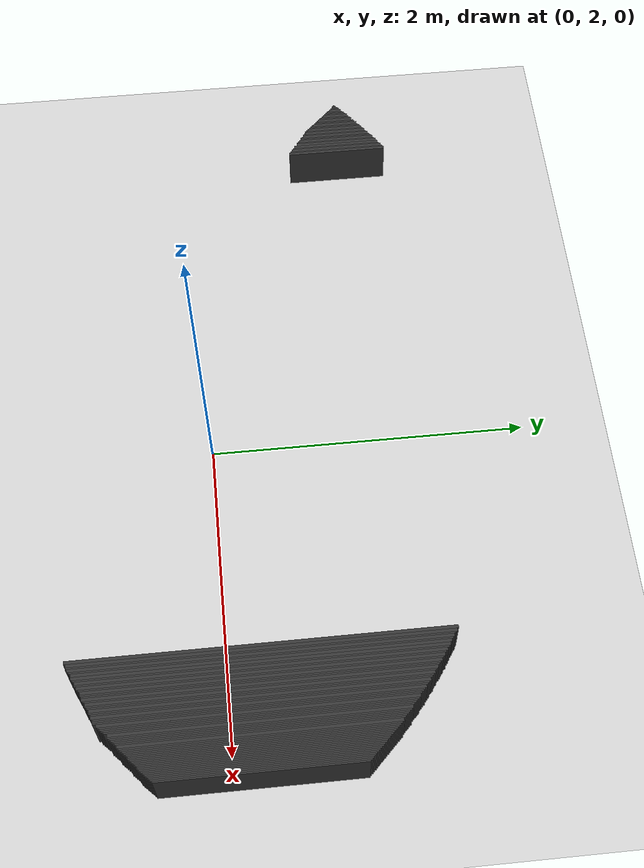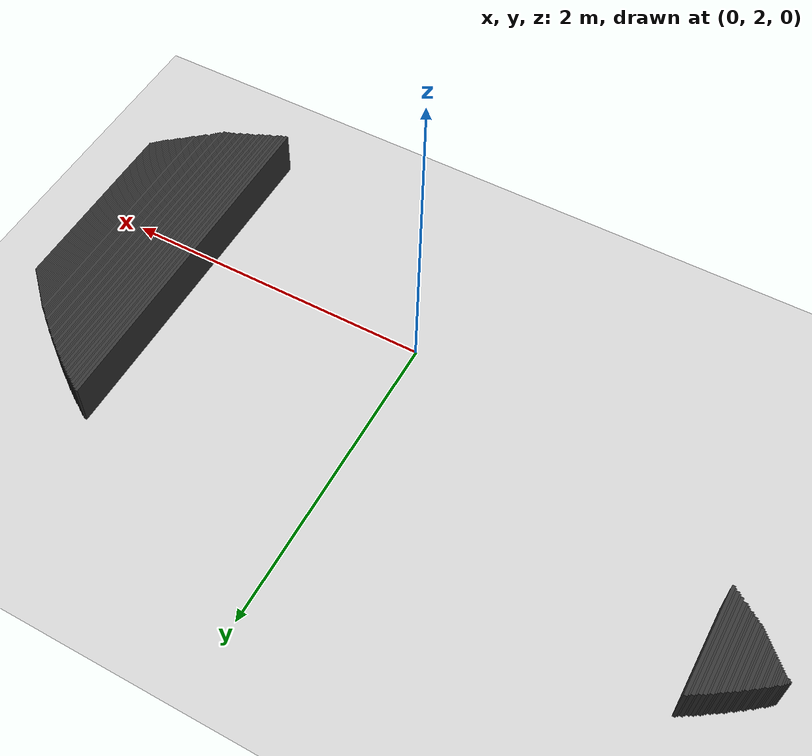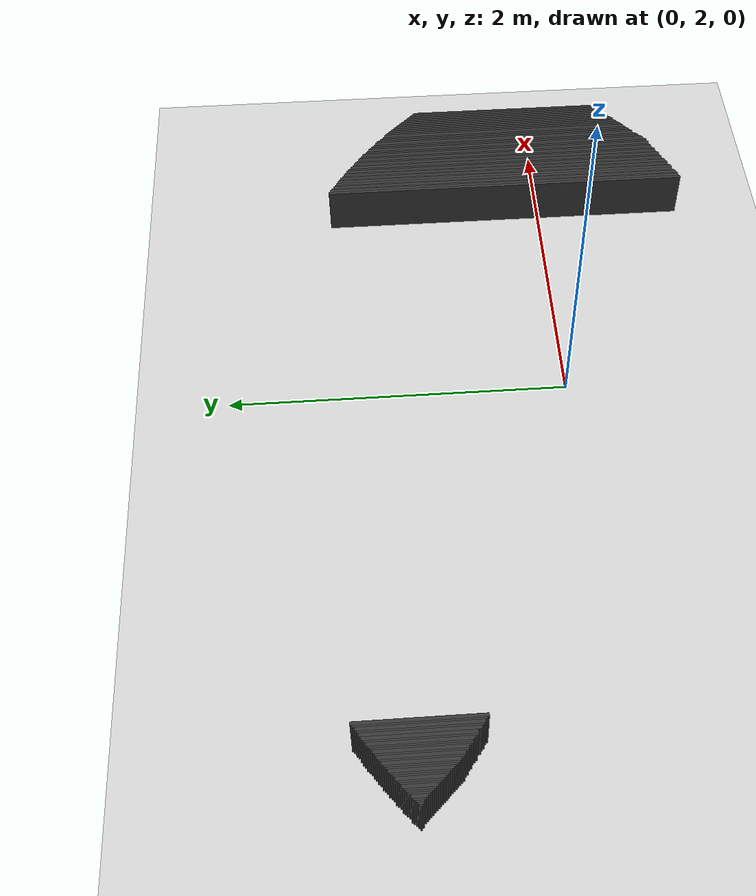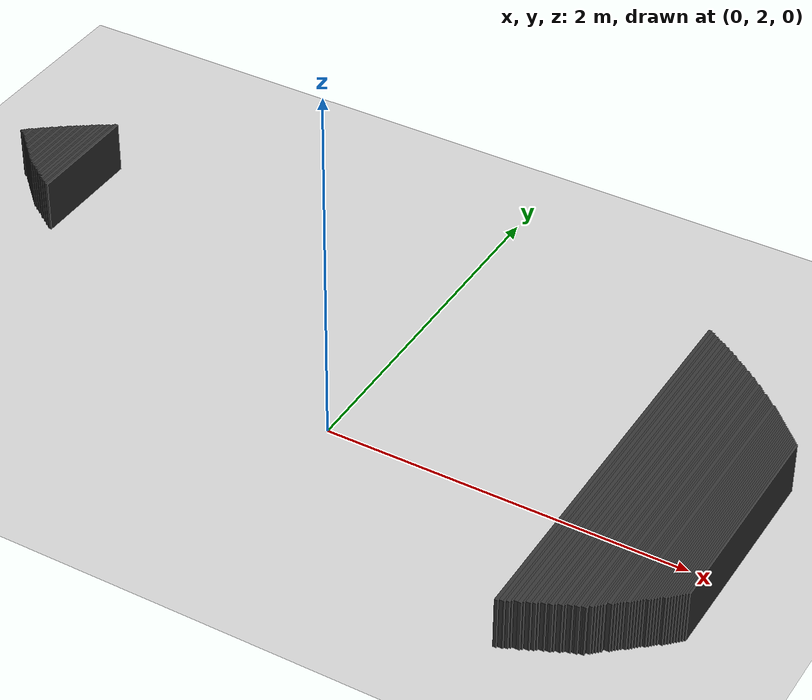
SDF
<sdf version="1.7">
 <world name="mapa_mundo">
  <model name="ground_plane">
   <static>true</static>
   <link name="link">
    <collision name="collision">
     <geometry><plane><normal>0 0 1</normal><size>10 10</size></plane></geometry>
     <surface><friction><ode><mu>100</mu><mu2>50</mu2></ode></friction></surface>
    </collision>
    <visual name="visual">
     <geometry><plane><normal>0 0 1</normal><size>10 10</size></plane></geometry>
     <material>
      <ambient>0.8 0.8 0.8 1</ambient>
      <diffuse>0.8 0.8 0.8 1</diffuse>
      <specular>0.8 0.8 0.8 1</specular>
     </material>
    </visual>
   </link>
  </model>
  <model name="wall_100">
   <static>true</static>
   <link name="link">
    <collision name="collision"><geometry><box><size>0.02 2.27 0.3</size></box></geometry></collision>
    <visual name="visual">
     <geometry><box><size>0.02 2.27 0.3</size></box></geometry>
     <material><ambient>0.2 0.2 0.2 1</ambient><diffuse>0.2 0.2 0.2 1</diffuse></material>
    </visual>
    <pose>1.45 2.225 0.15 0 0 0</pose>
   </link>
  </model>
  <model name="wall_101">
   <static>true</static>
   <link name="link">
    <collision name="collision"><geometry><box><size>0.02 0.67 0.3</size></box></geometry></collision>
    <visual name="visual">
     <geometry><box><size>0.02 0.67 0.3</size></box></geometry>
     <material><ambient>0.2 0.2 0.2 1</ambient><diffuse>0.2 0.2 0.2 1</diffuse></material>
    </visual>
    <pose>-2.21 3.015 0.15 0 0 0</pose>
   </link>
  </model>
  <model name="wall_102">
   <static>true</static>
   <link name="link">
    <collision name="collision"><geometry><box><size>0.02 2.25 0.3</size></box></geometry></collision>
    <visual name="visual">
     <geometry><box><size>0.02 2.25 0.3</size></box></geometry>
     <material><ambient>0.2 0.2 0.2 1</ambient><diffuse>0.2 0.2 0.2 1</diffuse></material>
    </visual>
    <pose>1.47 2.225 0.15 0 0 0</pose>
   </link>
  </model>
  <model name="wall_103">
   <static>true</static>
   <link name="link">
    <collision name="collision"><geometry><box><size>0.01 0.65 0.3</size></box></geometry></collision>
    <visual name="visual">
     <geometry><box><size>0.01 0.65 0.3</size></box></geometry>
     <material><ambient>0.2 0.2 0.2 1</ambient><diffuse>0.2 0.2 0.2 1</diffuse></material>
    </visual>
    <pose>-2.225 3.015 0.15 0 0 0</pose>
   </link>
  </model>
  <model name="wall_104">
   <static>true</static>
   <link name="link">
    <collision name="collision"><geometry><box><size>0.01 2.24 0.3</size></box></geometry></collision>
    <visual name="visual">
     <geometry><box><size>0.01 2.24 0.3</size></box></geometry>
     <material><ambient>0.2 0.2 0.2 1</ambient><diffuse>0.2 0.2 0.2 1</diffuse></material>
    </visual>
    <pose>1.485 2.22 0.15 0 0 0</pose>
   </link>
  </model>
  <model name="wall_105">
   <static>true</static>
   <link name="link">
    <collision name="collision"><geometry><box><size>0.02 0.63 0.3</size></box></geometry></collision>
    <visual name="visual">
     <geometry><box><size>0.02 0.63 0.3</size></box></geometry>
     <material><ambient>0.2 0.2 0.2 1</ambient><diffuse>0.2 0.2 0.2 1</diffuse></material>
    </visual>
    <pose>-2.24 3.015 0.15 0 0 0</pose>
   </link>
  </model>
  <model name="wall_106">
   <static>true</static>
   <link name="link">
    <collision name="collision"><geometry><box><size>0.02 2.22 0.3</size></box></geometry></collision>
    <visual name="visual">
     <geometry><box><size>0.02 2.22 0.3</size></box></geometry>
     <material><ambient>0.2 0.2 0.2 1</ambient><diffuse>0.2 0.2 0.2 1</diffuse></material>
    </visual>
    <pose>1.5 2.22 0.15 0 0 0</pose>
   </link>
  </model>
  <model name="wall_107">
   <static>true</static>
   <link name="link">
    <collision name="collision"><geometry><box><size>0.01 0.61 0.3</size></box></geometry></collision>
    <visual name="visual">
     <geometry><box><size>0.01 0.61 0.3</size></box></geometry>
     <material><ambient>0.2 0.2 0.2 1</ambient><diffuse>0.2 0.2 0.2 1</diffuse></material>
    </visual>
    <pose>-2.255 3.015 0.15 0 0 0</pose>
   </link>
  </model>
  <model name="wall_108">
   <static>true</static>
   <link name="link">
    <collision name="collision"><geometry><box><size>0.01 2.2 0.3</size></box></geometry></collision>
    <visual name="visual">
     <geometry><box><size>0.01 2.2 0.3</size></box></geometry>
     <material><ambient>0.2 0.2 0.2 1</ambient><diffuse>0.2 0.2 0.2 1</diffuse></material>
    </visual>
    <pose>1.5150000000000001 2.22 0.15 0 0 0</pose>
   </link>
  </model>
  <model name="wall_109">
   <static>true</static>
   <link name="link">
    <collision name="collision"><geometry><box><size>0.02 0.59 0.3</size></box></geometry></collision>
    <visual name="visual">
     <geometry><box><size>0.02 0.59 0.3</size></box></geometry>
     <material><ambient>0.2 0.2 0.2 1</ambient><diffuse>0.2 0.2 0.2 1</diffuse></material>
    </visual>
    <pose>-2.27 3.015 0.15 0 0 0</pose>
   </link>
  </model>
  <model name="wall_110">
   <static>true</static>
   <link name="link">
    <collision name="collision"><geometry><box><size>0.02 2.18 0.3</size></box></geometry></collision>
    <visual name="visual">
     <geometry><box><size>0.02 2.18 0.3</size></box></geometry>
     <material><ambient>0.2 0.2 0.2 1</ambient><diffuse>0.2 0.2 0.2 1</diffuse></material>
    </visual>
    <pose>1.53 2.22 0.15 0 0 0</pose>
   </link>
  </model>
  <model name="wall_111">
   <static>true</static>
   <link name="link">
    <collision name="collision"><geometry><box><size>0.02 0.56 0.3</size></box></geometry></collision>
    <visual name="visual">
     <geometry><box><size>0.02 0.56 0.3</size></box></geometry>
     <material><ambient>0.2 0.2 0.2 1</ambient><diffuse>0.2 0.2 0.2 1</diffuse></material>
    </visual>
    <pose>-2.29 3.02 0.15 0 0 0</pose>
   </link>
  </model>
  <model name="wall_112">
   <static>true</static>
   <link name="link">
    <collision name="collision"><geometry><box><size>0.02 2.17 0.3</size></box></geometry></collision>
    <visual name="visual">
     <geometry><box><size>0.02 2.17 0.3</size></box></geometry>
     <material><ambient>0.2 0.2 0.2 1</ambient><diffuse>0.2 0.2 0.2 1</diffuse></material>
    </visual>
    <pose>1.55 2.215 0.15 0 0 0</pose>
   </link>
  </model>
  <model name="wall_113">
   <static>true</static>
   <link name="link">
    <collision name="collision"><geometry><box><size>0.01 0.55 0.3</size></box></geometry></collision>
    <visual name="visual">
     <geometry><box><size>0.01 0.55 0.3</size></box></geometry>
     <material><ambient>0.2 0.2 0.2 1</ambient><diffuse>0.2 0.2 0.2 1</diffuse></material>
    </visual>
    <pose>-2.305 3.015 0.15 0 0 0</pose>
   </link>
  </model>
  <model name="wall_114">
   <static>true</static>
   <link name="link">
    <collision name="collision"><geometry><box><size>0.01 2.15 0.3</size></box></geometry></collision>
    <visual name="visual">
     <geometry><box><size>0.01 2.15 0.3</size></box></geometry>
     <material><ambient>0.2 0.2 0.2 1</ambient><diffuse>0.2 0.2 0.2 1</diffuse></material>
    </visual>
    <pose>1.565 2.215 0.15 0 0 0</pose>
   </link>
  </model>
  <model name="wall_115">
   <static>true</static>
   <link name="link">
    <collision name="collision"><geometry><box><size>0.02 0.52 0.3</size></box></geometry></collision>
    <visual name="visual">
     <geometry><box><size>0.02 0.52 0.3</size></box></geometry>
     <material><ambient>0.2 0.2 0.2 1</ambient><diffuse>0.2 0.2 0.2 1</diffuse></material>
    </visual>
    <pose>-2.32 3.02 0.15 0 0 0</pose>
   </link>
  </model>
  <model name="wall_116">
   <static>true</static>
   <link name="link">
    <collision name="collision"><geometry><box><size>0.02 2.13 0.3</size></box></geometry></collision>
    <visual name="visual">
     <geometry><box><size>0.02 2.13 0.3</size></box></geometry>
     <material><ambient>0.2 0.2 0.2 1</ambient><diffuse>0.2 0.2 0.2 1</diffuse></material>
    </visual>
    <pose>1.58 2.215 0.15 0 0 0</pose>
   </link>
  </model>
  <model name="wall_117">
   <static>true</static>
   <link name="link">
    <collision name="collision"><geometry><box><size>0.01 0.5 0.3</size></box></geometry></collision>
    <visual name="visual">
     <geometry><box><size>0.01 0.5 0.3</size></box></geometry>
     <material><ambient>0.2 0.2 0.2 1</ambient><diffuse>0.2 0.2 0.2 1</diffuse></material>
    </visual>
    <pose>-2.335 3.02 0.15 0 0 0</pose>
   </link>
  </model>
  <model name="wall_118">
   <static>true</static>
   <link name="link">
    <collision name="collision"><geometry><box><size>0.01 2.12 0.3</size></box></geometry></collision>
    <visual name="visual">
     <geometry><box><size>0.01 2.12 0.3</size></box></geometry>
     <material><ambient>0.2 0.2 0.2 1</ambient><diffuse>0.2 0.2 0.2 1</diffuse></material>
    </visual>
    <pose>1.595 2.21 0.15 0 0 0</pose>
   </link>
  </model>
  <model name="wall_119">
   <static>true</static>
   <link name="link">
    <collision name="collision"><geometry><box><size>0.01 0.49 0.3</size></box></geometry></collision>
    <visual name="visual">
     <geometry><box><size>0.01 0.49 0.3</size></box></geometry>
     <material><ambient>0.2 0.2 0.2 1</ambient><diffuse>0.2 0.2 0.2 1</diffuse></material>
    </visual>
    <pose>-2.345 3.015 0.15 0 0 0</pose>
   </link>
  </model>
  <model name="wall_120">
   <static>true</static>
   <link name="link">
    <collision name="collision"><geometry><box><size>0.02 2.1 0.3</size></box></geometry></collision>
    <visual name="visual">
     <geometry><box><size>0.02 2.1 0.3</size></box></geometry>
     <material><ambient>0.2 0.2 0.2 1</ambient><diffuse>0.2 0.2 0.2 1</diffuse></material>
    </visual>
    <pose>1.61 2.21 0.15 0 0 0</pose>
   </link>
  </model>
  <model name="wall_121">
   <static>true</static>
   <link name="link">
    <collision name="collision"><geometry><box><size>0.02 0.46 0.3</size></box></geometry></collision>
    <visual name="visual">
     <geometry><box><size>0.02 0.46 0.3</size></box></geometry>
     <material><ambient>0.2 0.2 0.2 1</ambient><diffuse>0.2 0.2 0.2 1</diffuse></material>
    </visual>
    <pose>-2.36 3.02 0.15 0 0 0</pose>
   </link>
  </model>
  <model name="wall_122">
   <static>true</static>
   <link name="link">
    <collision name="collision"><geometry><box><size>0.01 2.08 0.3</size></box></geometry></collision>
    <visual name="visual">
     <geometry><box><size>0.01 2.08 0.3</size></box></geometry>
     <material><ambient>0.2 0.2 0.2 1</ambient><diffuse>0.2 0.2 0.2 1</diffuse></material>
    </visual>
    <pose>1.625 2.21 0.15 0 0 0</pose>
   </link>
  </model>
  <model name="wall_123">
   <static>true</static>
   <link name="link">
    <collision name="collision"><geometry><box><size>0.01 0.45 0.3</size></box></geometry></collision>
    <visual name="visual">
     <geometry><box><size>0.01 0.45 0.3</size></box></geometry>
     <material><ambient>0.2 0.2 0.2 1</ambient><diffuse>0.2 0.2 0.2 1</diffuse></material>
    </visual>
    <pose>-2.375 3.015 0.15 0 0 0</pose>
   </link>
  </model>
  <model name="wall_124">
   <static>true</static>
   <link name="link">
    <collision name="collision"><geometry><box><size>0.02 2.06 0.3</size></box></geometry></collision>
    <visual name="visual">
     <geometry><box><size>0.02 2.06 0.3</size></box></geometry>
     <material><ambient>0.2 0.2 0.2 1</ambient><diffuse>0.2 0.2 0.2 1</diffuse></material>
    </visual>
    <pose>1.6400000000000001 2.21 0.15 0 0 0</pose>
   </link>
  </model>
  <model name="wall_125">
   <static>true</static>
   <link name="link">
    <collision name="collision"><geometry><box><size>0.02 0.42 0.3</size></box></geometry></collision>
    <visual name="visual">
     <geometry><box><size>0.02 0.42 0.3</size></box></geometry>
     <material><ambient>0.2 0.2 0.2 1</ambient><diffuse>0.2 0.2 0.2 1</diffuse></material>
    </visual>
    <pose>-2.39 3.02 0.15 0 0 0</pose>
   </link>
  </model>
  <model name="wall_126">
   <static>true</static>
   <link name="link">
    <collision name="collision"><geometry><box><size>0.01 2.05 0.3</size></box></geometry></collision>
    <visual name="visual">
     <geometry><box><size>0.01 2.05 0.3</size></box></geometry>
     <material><ambient>0.2 0.2 0.2 1</ambient><diffuse>0.2 0.2 0.2 1</diffuse></material>
    </visual>
    <pose>1.655 2.205 0.15 0 0 0</pose>
   </link>
  </model>
  <model name="wall_127">
   <static>true</static>
   <link name="link">
    <collision name="collision">
     <geometry><box><size>0.01 0.41000000000000003 0.3</size></box></geometry>
    </collision>
    <visual name="visual">
     <geometry><box><size>0.01 0.41000000000000003 0.3</size></box></geometry>
     <material><ambient>0.2 0.2 0.2 1</ambient><diffuse>0.2 0.2 0.2 1</diffuse></material>
    </visual>
    <pose>-2.4050000000000002 3.015 0.15 0 0 0</pose>
   </link>
  </model>
  <model name="wall_128">
   <static>true</static>
   <link name="link">
    <collision name="collision">
     <geometry><box><size>0.01 2.0300000000000002 0.3</size></box></geometry>
    </collision>
    <visual name="visual">
     <geometry><box><size>0.01 2.0300000000000002 0.3</size></box></geometry>
     <material><ambient>0.2 0.2 0.2 1</ambient><diffuse>0.2 0.2 0.2 1</diffuse></material>
    </visual>
    <pose>1.665 2.205 0.15 0 0 0</pose>
   </link>
  </model>
  <model name="wall_129">
   <static>true</static>
   <link name="link">
    <collision name="collision"><geometry><box><size>0.02 0.38 0.3</size></box></geometry></collision>
    <visual name="visual">
     <geometry><box><size>0.02 0.38 0.3</size></box></geometry>
     <material><ambient>0.2 0.2 0.2 1</ambient><diffuse>0.2 0.2 0.2 1</diffuse></material>
    </visual>
    <pose>-2.42 3.02 0.15 0 0 0</pose>
   </link>
  </model>
  <model name="wall_130">
   <static>true</static>
   <link name="link">
    <collision name="collision"><geometry><box><size>0.02 2.02 0.3</size></box></geometry></collision>
    <visual name="visual">
     <geometry><box><size>0.02 2.02 0.3</size></box></geometry>
     <material><ambient>0.2 0.2 0.2 1</ambient><diffuse>0.2 0.2 0.2 1</diffuse></material>
    </visual>
    <pose>1.68 2.2 0.15 0 0 0</pose>
   </link>
  </model>
  <model name="wall_131">
   <static>true</static>
   <link name="link">
    <collision name="collision"><geometry><box><size>0.01 0.36 0.3</size></box></geometry></collision>
    <visual name="visual">
     <geometry><box><size>0.01 0.36 0.3</size></box></geometry>
     <material><ambient>0.2 0.2 0.2 1</ambient><diffuse>0.2 0.2 0.2 1</diffuse></material>
    </visual>
    <pose>-2.435 3.02 0.15 0 0 0</pose>
   </link>
  </model>
  <model name="wall_132">
   <static>true</static>
   <link name="link">
    <collision name="collision"><geometry><box><size>0.01 2.0 0.3</size></box></geometry></collision>
    <visual name="visual">
     <geometry><box><size>0.01 2.0 0.3</size></box></geometry>
     <material><ambient>0.2 0.2 0.2 1</ambient><diffuse>0.2 0.2 0.2 1</diffuse></material>
    </visual>
    <pose>1.695 2.2 0.15 0 0 0</pose>
   </link>
  </model>
  <model name="wall_133">
   <static>true</static>
   <link name="link">
    <collision name="collision"><geometry><box><size>0.01 0.34 0.3</size></box></geometry></collision>
    <visual name="visual">
     <geometry><box><size>0.01 0.34 0.3</size></box></geometry>
     <material><ambient>0.2 0.2 0.2 1</ambient><diffuse>0.2 0.2 0.2 1</diffuse></material>
    </visual>
    <pose>-2.445 3.02 0.15 0 0 0</pose>
   </link>
  </model>
  <model name="wall_134">
   <static>true</static>
   <link name="link">
    <collision name="collision"><geometry><box><size>0.02 1.98 0.3</size></box></geometry></collision>
    <visual name="visual">
     <geometry><box><size>0.02 1.98 0.3</size></box></geometry>
     <material><ambient>0.2 0.2 0.2 1</ambient><diffuse>0.2 0.2 0.2 1</diffuse></material>
    </visual>
    <pose>1.71 2.2 0.15 0 0 0</pose>
   </link>
  </model>
  <model name="wall_135">
   <static>true</static>
   <link name="link">
    <collision name="collision"><geometry><box><size>0.02 0.31 0.3</size></box></geometry></collision>
    <visual name="visual">
     <geometry><box><size>0.02 0.31 0.3</size></box></geometry>
     <material><ambient>0.2 0.2 0.2 1</ambient><diffuse>0.2 0.2 0.2 1</diffuse></material>
    </visual>
    <pose>-2.46 3.025 0.15 0 0 0</pose>
   </link>
  </model>
  <model name="wall_136">
   <static>true</static>
   <link name="link">
    <collision name="collision"><geometry><box><size>0.01 1.97 0.3</size></box></geometry></collision>
    <visual name="visual">
     <geometry><box><size>0.01 1.97 0.3</size></box></geometry>
     <material><ambient>0.2 0.2 0.2 1</ambient><diffuse>0.2 0.2 0.2 1</diffuse></material>
    </visual>
    <pose>1.725 2.195 0.15 0 0 0</pose>
   </link>
  </model>
  <model name="wall_137">
   <static>true</static>
   <link name="link">
    <collision name="collision"><geometry><box><size>0.01 0.29 0.3</size></box></geometry></collision>
    <visual name="visual">
     <geometry><box><size>0.01 0.29 0.3</size></box></geometry>
     <material><ambient>0.2 0.2 0.2 1</ambient><diffuse>0.2 0.2 0.2 1</diffuse></material>
    </visual>
    <pose>-2.475 3.025 0.15 0 0 0</pose>
   </link>
  </model>
  <model name="wall_138">
   <static>true</static>
   <link name="link">
    <collision name="collision"><geometry><box><size>0.01 1.95 0.3</size></box></geometry></collision>
    <visual name="visual">
     <geometry><box><size>0.01 1.95 0.3</size></box></geometry>
     <material><ambient>0.2 0.2 0.2 1</ambient><diffuse>0.2 0.2 0.2 1</diffuse></material>
    </visual>
    <pose>1.735 2.195 0.15 0 0 0</pose>
   </link>
  </model>
  <model name="wall_139">
   <static>true</static>
   <link name="link">
    <collision name="collision"><geometry><box><size>0.01 0.27 0.3</size></box></geometry></collision>
    <visual name="visual">
     <geometry><box><size>0.01 0.27 0.3</size></box></geometry>
     <material><ambient>0.2 0.2 0.2 1</ambient><diffuse>0.2 0.2 0.2 1</diffuse></material>
    </visual>
    <pose>-2.485 3.025 0.15 0 0 0</pose>
   </link>
  </model>
  <model name="wall_140">
   <static>true</static>
   <link name="link">
    <collision name="collision"><geometry><box><size>0.02 1.93 0.3</size></box></geometry></collision>
    <visual name="visual">
     <geometry><box><size>0.02 1.93 0.3</size></box></geometry>
     <material><ambient>0.2 0.2 0.2 1</ambient><diffuse>0.2 0.2 0.2 1</diffuse></material>
    </visual>
    <pose>1.75 2.195 0.15 0 0 0</pose>
   </link>
  </model>
  <model name="wall_141">
   <static>true</static>
   <link name="link">
    <collision name="collision"><geometry><box><size>0.02 0.24 0.3</size></box></geometry></collision>
    <visual name="visual">
     <geometry><box><size>0.02 0.24 0.3</size></box></geometry>
     <material><ambient>0.2 0.2 0.2 1</ambient><diffuse>0.2 0.2 0.2 1</diffuse></material>
    </visual>
    <pose>-2.5 3.0300000000000002 0.15 0 0 0</pose>
   </link>
  </model>
  <model name="wall_142">
   <static>true</static>
   <link name="link">
    <collision name="collision"><geometry><box><size>0.01 1.92 0.3</size></box></geometry></collision>
    <visual name="visual">
     <geometry><box><size>0.01 1.92 0.3</size></box></geometry>
     <material><ambient>0.2 0.2 0.2 1</ambient><diffuse>0.2 0.2 0.2 1</diffuse></material>
    </visual>
    <pose>1.7650000000000001 2.19 0.15 0 0 0</pose>
   </link>
  </model>
  <model name="wall_143">
   <static>true</static>
   <link name="link">
    <collision name="collision"><geometry><box><size>0.01 0.22 0.3</size></box></geometry></collision>
    <visual name="visual">
     <geometry><box><size>0.01 0.22 0.3</size></box></geometry>
     <material><ambient>0.2 0.2 0.2 1</ambient><diffuse>0.2 0.2 0.2 1</diffuse></material>
    </visual>
    <pose>-2.515 3.0300000000000002 0.15 0 0 0</pose>
   </link>
  </model>
  <model name="wall_144">
   <static>true</static>
   <link name="link">
    <collision name="collision">
     <geometry><box><size>0.01 1.9000000000000001 0.3</size></box></geometry>
    </collision>
    <visual name="visual">
     <geometry><box><size>0.01 1.9000000000000001 0.3</size></box></geometry>
     <material><ambient>0.2 0.2 0.2 1</ambient><diffuse>0.2 0.2 0.2 1</diffuse></material>
    </visual>
    <pose>1.7750000000000001 2.19 0.15 0 0 0</pose>
   </link>
  </model>
  <model name="wall_145">
   <static>true</static>
   <link name="link">
    <collision name="collision"><geometry><box><size>0.01 0.2 0.3</size></box></geometry></collision>
    <visual name="visual">
     <geometry><box><size>0.01 0.2 0.3</size></box></geometry>
     <material><ambient>0.2 0.2 0.2 1</ambient><diffuse>0.2 0.2 0.2 1</diffuse></material>
    </visual>
    <pose>-2.525 3.0300000000000002 0.15 0 0 0</pose>
   </link>
  </model>
  <model name="wall_146">
   <static>true</static>
   <link name="link">
    <collision name="collision">
     <geometry><box><size>0.02 1.8900000000000001 0.3</size></box></geometry>
    </collision>
    <visual name="visual">
     <geometry><box><size>0.02 1.8900000000000001 0.3</size></box></geometry>
     <material><ambient>0.2 0.2 0.2 1</ambient><diffuse>0.2 0.2 0.2 1</diffuse></material>
    </visual>
    <pose>1.79 2.185 0.15 0 0 0</pose>
   </link>
  </model>
  <model name="wall_147">
   <static>true</static>
   <link name="link">
    <collision name="collision"><geometry><box><size>0.02 0.17 0.3</size></box></geometry></collision>
    <visual name="visual">
     <geometry><box><size>0.02 0.17 0.3</size></box></geometry>
     <material><ambient>0.2 0.2 0.2 1</ambient><diffuse>0.2 0.2 0.2 1</diffuse></material>
    </visual>
    <pose>-2.54 3.035 0.15 0 0 0</pose>
   </link>
  </model>
  <model name="wall_148">
   <static>true</static>
   <link name="link">
    <collision name="collision"><geometry><box><size>0.01 1.87 0.3</size></box></geometry></collision>
    <visual name="visual">
     <geometry><box><size>0.01 1.87 0.3</size></box></geometry>
     <material><ambient>0.2 0.2 0.2 1</ambient><diffuse>0.2 0.2 0.2 1</diffuse></material>
    </visual>
    <pose>1.805 2.185 0.15 0 0 0</pose>
   </link>
  </model>
  <model name="wall_149">
   <static>true</static>
   <link name="link">
    <collision name="collision"><geometry><box><size>0.01 0.15 0.3</size></box></geometry></collision>
    <visual name="visual">
     <geometry><box><size>0.01 0.15 0.3</size></box></geometry>
     <material><ambient>0.2 0.2 0.2 1</ambient><diffuse>0.2 0.2 0.2 1</diffuse></material>
    </visual>
    <pose>-2.555 3.035 0.15 0 0 0</pose>
   </link>
  </model>
  <model name="wall_150">
   <static>true</static>
   <link name="link">
    <collision name="collision"><geometry><box><size>0.01 1.86 0.3</size></box></geometry></collision>
    <visual name="visual">
     <geometry><box><size>0.01 1.86 0.3</size></box></geometry>
     <material><ambient>0.2 0.2 0.2 1</ambient><diffuse>0.2 0.2 0.2 1</diffuse></material>
    </visual>
    <pose>1.815 2.18 0.15 0 0 0</pose>
   </link>
  </model>
  <model name="wall_151">
   <static>true</static>
   <link name="link">
    <collision name="collision"><geometry><box><size>0.01 0.13 0.3</size></box></geometry></collision>
    <visual name="visual">
     <geometry><box><size>0.01 0.13 0.3</size></box></geometry>
     <material><ambient>0.2 0.2 0.2 1</ambient><diffuse>0.2 0.2 0.2 1</diffuse></material>
    </visual>
    <pose>-2.565 3.035 0.15 0 0 0</pose>
   </link>
  </model>
  <model name="wall_152">
   <static>true</static>
   <link name="link">
    <collision name="collision"><geometry><box><size>0.01 1.85 0.3</size></box></geometry></collision>
    <visual name="visual">
     <geometry><box><size>0.01 1.85 0.3</size></box></geometry>
     <material><ambient>0.2 0.2 0.2 1</ambient><diffuse>0.2 0.2 0.2 1</diffuse></material>
    </visual>
    <pose>1.825 2.1750000000000003 0.15 0 0 0</pose>
   </link>
  </model>
  <model name="wall_153">
   <static>true</static>
   <link name="link">
    <collision name="collision"><geometry><box><size>0.01 0.11 0.3</size></box></geometry></collision>
    <visual name="visual">
     <geometry><box><size>0.01 0.11 0.3</size></box></geometry>
     <material><ambient>0.2 0.2 0.2 1</ambient><diffuse>0.2 0.2 0.2 1</diffuse></material>
    </visual>
    <pose>-2.575 3.035 0.15 0 0 0</pose>
   </link>
  </model>
  <model name="wall_154">
   <static>true</static>
   <link name="link">
    <collision name="collision"><geometry><box><size>0.02 1.82 0.3</size></box></geometry></collision>
    <visual name="visual">
     <geometry><box><size>0.02 1.82 0.3</size></box></geometry>
     <material><ambient>0.2 0.2 0.2 1</ambient><diffuse>0.2 0.2 0.2 1</diffuse></material>
    </visual>
    <pose>1.84 2.18 0.15 0 0 0</pose>
   </link>
  </model>
  <model name="wall_155">
   <static>true</static>
   <link name="link">
    <collision name="collision"><geometry><box><size>0.02 0.08 0.3</size></box></geometry></collision>
    <visual name="visual">
     <geometry><box><size>0.02 0.08 0.3</size></box></geometry>
     <material><ambient>0.2 0.2 0.2 1</ambient><diffuse>0.2 0.2 0.2 1</diffuse></material>
    </visual>
    <pose>-2.59 3.04 0.15 0 0 0</pose>
   </link>
  </model>
  <model name="wall_156">
   <static>true</static>
   <link name="link">
    <collision name="collision"><geometry><box><size>0.01 1.8 0.3</size></box></geometry></collision>
    <visual name="visual">
     <geometry><box><size>0.01 1.8 0.3</size></box></geometry>
     <material><ambient>0.2 0.2 0.2 1</ambient><diffuse>0.2 0.2 0.2 1</diffuse></material>
    </visual>
    <pose>1.855 2.18 0.15 0 0 0</pose>
   </link>
  </model>
  <model name="wall_157">
   <static>true</static>
   <link name="link">
    <collision name="collision"><geometry><box><size>0.01 0.06 0.3</size></box></geometry></collision>
    <visual name="visual">
     <geometry><box><size>0.01 0.06 0.3</size></box></geometry>
     <material><ambient>0.2 0.2 0.2 1</ambient><diffuse>0.2 0.2 0.2 1</diffuse></material>
    </visual>
    <pose>-2.605 3.04 0.15 0 0 0</pose>
   </link>
  </model>
  <model name="wall_158">
   <static>true</static>
   <link name="link">
    <collision name="collision"><geometry><box><size>0.01 1.78 0.3</size></box></geometry></collision>
    <visual name="visual">
     <geometry><box><size>0.01 1.78 0.3</size></box></geometry>
     <material><ambient>0.2 0.2 0.2 1</ambient><diffuse>0.2 0.2 0.2 1</diffuse></material>
    </visual>
    <pose>1.865 2.18 0.15 0 0 0</pose>
   </link>
  </model>
  <model name="wall_159">
   <static>true</static>
   <link name="link">
    <collision name="collision"><geometry><box><size>0.01 0.04 0.3</size></box></geometry></collision>
    <visual name="visual">
     <geometry><box><size>0.01 0.04 0.3</size></box></geometry>
     <material><ambient>0.2 0.2 0.2 1</ambient><diffuse>0.2 0.2 0.2 1</diffuse></material>
    </visual>
    <pose>-2.615 3.04 0.15 0 0 0</pose>
   </link>
  </model>
  <model name="wall_160">
   <static>true</static>
   <link name="link">
    <collision name="collision"><geometry><box><size>0.01 1.76 0.3</size></box></geometry></collision>
    <visual name="visual">
     <geometry><box><size>0.01 1.76 0.3</size></box></geometry>
     <material><ambient>0.2 0.2 0.2 1</ambient><diffuse>0.2 0.2 0.2 1</diffuse></material>
    </visual>
    <pose>1.875 2.18 0.15 0 0 0</pose>
   </link>
  </model>
  <model name="wall_161">
   <static>true</static>
   <link name="link">
    <collision name="collision"><geometry><box><size>0.01 0.03 0.3</size></box></geometry></collision>
    <visual name="visual">
     <geometry><box><size>0.01 0.03 0.3</size></box></geometry>
     <material><ambient>0.2 0.2 0.2 1</ambient><diffuse>0.2 0.2 0.2 1</diffuse></material>
    </visual>
    <pose>-2.625 3.035 0.15 0 0 0</pose>
   </link>
  </model>
  <model name="wall_162">
   <static>true</static>
   <link name="link">
    <collision name="collision"><geometry><box><size>0.01 1.74 0.3</size></box></geometry></collision>
    <visual name="visual">
     <geometry><box><size>0.01 1.74 0.3</size></box></geometry>
     <material><ambient>0.2 0.2 0.2 1</ambient><diffuse>0.2 0.2 0.2 1</diffuse></material>
    </visual>
    <pose>1.885 2.18 0.15 0 0 0</pose>
   </link>
  </model>
  <model name="wall_163">
   <static>true</static>
   <link name="link">
    <collision name="collision"><geometry><box><size>0.01 0.01 0.3</size></box></geometry></collision>
    <visual name="visual">
     <geometry><box><size>0.01 0.01 0.3</size></box></geometry>
     <material><ambient>0.2 0.2 0.2 1</ambient><diffuse>0.2 0.2 0.2 1</diffuse></material>
    </visual>
    <pose>-2.6350000000000002 3.035 0.15 0 0 0</pose>
   </link>
  </model>
  <model name="wall_164">
   <static>true</static>
   <link name="link">
    <collision name="collision"><geometry><box><size>0.02 1.71 0.3</size></box></geometry></collision>
    <visual name="visual">
     <geometry><box><size>0.02 1.71 0.3</size></box></geometry>
     <material><ambient>0.2 0.2 0.2 1</ambient><diffuse>0.2 0.2 0.2 1</diffuse></material>
    </visual>
    <pose>1.9000000000000001 2.185 0.15 0 0 0</pose>
   </link>
  </model>
  <model name="wall_165">
   <static>true</static>
   <link name="link">
    <collision name="collision"><geometry><box><size>0.01 1.7 0.3</size></box></geometry></collision>
    <visual name="visual">
     <geometry><box><size>0.01 1.7 0.3</size></box></geometry>
     <material><ambient>0.2 0.2 0.2 1</ambient><diffuse>0.2 0.2 0.2 1</diffuse></material>
    </visual>
    <pose>1.915 2.18 0.15 0 0 0</pose>
   </link>
  </model>
  <model name="wall_166">
   <static>true</static>
   <link name="link">
    <collision name="collision"><geometry><box><size>0.01 1.68 0.3</size></box></geometry></collision>
    <visual name="visual">
     <geometry><box><size>0.01 1.68 0.3</size></box></geometry>
     <material><ambient>0.2 0.2 0.2 1</ambient><diffuse>0.2 0.2 0.2 1</diffuse></material>
    </visual>
    <pose>1.925 2.18 0.15 0 0 0</pose>
   </link>
  </model>
  <model name="wall_167">
   <static>true</static>
   <link name="link">
    <collision name="collision">
     <geometry><box><size>0.01 1.6600000000000001 0.3</size></box></geometry>
    </collision>
    <visual name="visual">
     <geometry><box><size>0.01 1.6600000000000001 0.3</size></box></geometry>
     <material><ambient>0.2 0.2 0.2 1</ambient><diffuse>0.2 0.2 0.2 1</diffuse></material>
    </visual>
    <pose>1.935 2.18 0.15 0 0 0</pose>
   </link>
  </model>
  <model name="wall_168">
   <static>true</static>
   <link name="link">
    <collision name="collision"><geometry><box><size>0.01 0.01 0.3</size></box></geometry></collision>
    <visual name="visual">
     <geometry><box><size>0.01 0.01 0.3</size></box></geometry>
     <material><ambient>0.2 0.2 0.2 1</ambient><diffuse>0.2 0.2 0.2 1</diffuse></material>
    </visual>
    <pose>-2.585 2.995 0.15 0 0 0</pose>
   </link>
  </model>
  <model name="wall_169">
   <static>true</static>
   <link name="link">
    <collision name="collision">
     <geometry><box><size>0.01 1.6400000000000001 0.3</size></box></geometry>
    </collision>
    <visual name="visual">
     <geometry><box><size>0.01 1.6400000000000001 0.3</size></box></geometry>
     <material><ambient>0.2 0.2 0.2 1</ambient><diffuse>0.2 0.2 0.2 1</diffuse></material>
    </visual>
    <pose>1.945 2.18 0.15 0 0 0</pose>
   </link>
  </model>
  <model name="wall_170">
   <static>true</static>
   <link name="link">
    <collision name="collision"><geometry><box><size>0.01 1.62 0.3</size></box></geometry></collision>
    <visual name="visual">
     <geometry><box><size>0.01 1.62 0.3</size></box></geometry>
     <material><ambient>0.2 0.2 0.2 1</ambient><diffuse>0.2 0.2 0.2 1</diffuse></material>
    </visual>
    <pose>1.955 2.18 0.15 0 0 0</pose>
   </link>
  </model>
  <model name="wall_171">
   <static>true</static>
   <link name="link">
    <collision name="collision"><geometry><box><size>0.02 1.6 0.3</size></box></geometry></collision>
    <visual name="visual">
     <geometry><box><size>0.02 1.6 0.3</size></box></geometry>
     <material><ambient>0.2 0.2 0.2 1</ambient><diffuse>0.2 0.2 0.2 1</diffuse></material>
    </visual>
    <pose>1.97 2.18 0.15 0 0 0</pose>
   </link>
  </model>
  <model name="wall_172">
   <static>true</static>
   <link name="link">
    <collision name="collision"><geometry><box><size>0.01 1.58 0.3</size></box></geometry></collision>
    <visual name="visual">
     <geometry><box><size>0.01 1.58 0.3</size></box></geometry>
     <material><ambient>0.2 0.2 0.2 1</ambient><diffuse>0.2 0.2 0.2 1</diffuse></material>
    </visual>
    <pose>1.985 2.18 0.15 0 0 0</pose>
   </link>
  </model>
  <model name="wall_173">
   <static>true</static>
   <link name="link">
    <collision name="collision"><geometry><box><size>0.01 1.56 0.3</size></box></geometry></collision>
    <visual name="visual">
     <geometry><box><size>0.01 1.56 0.3</size></box></geometry>
     <material><ambient>0.2 0.2 0.2 1</ambient><diffuse>0.2 0.2 0.2 1</diffuse></material>
    </visual>
    <pose>1.995 2.18 0.15 0 0 0</pose>
   </link>
  </model>
  <model name="wall_174">
   <static>true</static>
   <link name="link">
    <collision name="collision"><geometry><box><size>0.01 0.01 0.3</size></box></geometry></collision>
    <visual name="visual">
     <geometry><box><size>0.01 0.01 0.3</size></box></geometry>
     <material><ambient>0.2 0.2 0.2 1</ambient><diffuse>0.2 0.2 0.2 1</diffuse></material>
    </visual>
    <pose>-2.535 2.945 0.15 0 0 0</pose>
   </link>
  </model>
  <model name="wall_175">
   <static>true</static>
   <link name="link">
    <collision name="collision"><geometry><box><size>0.01 1.54 0.3</size></box></geometry></collision>
    <visual name="visual">
     <geometry><box><size>0.01 1.54 0.3</size></box></geometry>
     <material><ambient>0.2 0.2 0.2 1</ambient><diffuse>0.2 0.2 0.2 1</diffuse></material>
    </visual>
    <pose>2.005 2.18 0.15 0 0 0</pose>
   </link>
  </model>
  <model name="wall_176">
   <static>true</static>
   <link name="link">
    <collision name="collision"><geometry><box><size>0.01 1.52 0.3</size></box></geometry></collision>
    <visual name="visual">
     <geometry><box><size>0.01 1.52 0.3</size></box></geometry>
     <material><ambient>0.2 0.2 0.2 1</ambient><diffuse>0.2 0.2 0.2 1</diffuse></material>
    </visual>
    <pose>2.015 2.18 0.15 0 0 0</pose>
   </link>
  </model>
  <model name="wall_177">
   <static>true</static>
   <link name="link">
    <collision name="collision"><geometry><box><size>0.01 1.5 0.3</size></box></geometry></collision>
    <visual name="visual">
     <geometry><box><size>0.01 1.5 0.3</size></box></geometry>
     <material><ambient>0.2 0.2 0.2 1</ambient><diffuse>0.2 0.2 0.2 1</diffuse></material>
    </visual>
    <pose>2.025 2.18 0.15 0 0 0</pose>
   </link>
  </model>
  <model name="wall_178">
   <static>true</static>
   <link name="link">
    <collision name="collision"><geometry><box><size>0.01 1.48 0.3</size></box></geometry></collision>
    <visual name="visual">
     <geometry><box><size>0.01 1.48 0.3</size></box></geometry>
     <material><ambient>0.2 0.2 0.2 1</ambient><diffuse>0.2 0.2 0.2 1</diffuse></material>
    </visual>
    <pose>2.035 2.18 0.15 0 0 0</pose>
   </link>
  </model>
  <model name="wall_179">
   <static>true</static>
   <link name="link">
    <collision name="collision"><geometry><box><size>0.01 0.01 0.3</size></box></geometry></collision>
    <visual name="visual">
     <geometry><box><size>0.01 0.01 0.3</size></box></geometry>
     <material><ambient>0.2 0.2 0.2 1</ambient><diffuse>0.2 0.2 0.2 1</diffuse></material>
    </visual>
    <pose>-2.495 2.9050000000000002 0.15 0 0 0</pose>
   </link>
  </model>
  <model name="wall_180">
   <static>true</static>
   <link name="link">
    <collision name="collision"><geometry><box><size>0.01 1.47 0.3</size></box></geometry></collision>
    <visual name="visual">
     <geometry><box><size>0.01 1.47 0.3</size></box></geometry>
     <material><ambient>0.2 0.2 0.2 1</ambient><diffuse>0.2 0.2 0.2 1</diffuse></material>
    </visual>
    <pose>2.045 2.1750000000000003 0.15 0 0 0</pose>
   </link>
  </model>
  <model name="wall_181">
   <static>true</static>
   <link name="link">
    <collision name="collision"><geometry><box><size>0.01 1.45 0.3</size></box></geometry></collision>
    <visual name="visual">
     <geometry><box><size>0.01 1.45 0.3</size></box></geometry>
     <material><ambient>0.2 0.2 0.2 1</ambient><diffuse>0.2 0.2 0.2 1</diffuse></material>
    </visual>
    <pose>2.055 2.1750000000000003 0.15 0 0 0</pose>
   </link>
  </model>
  <model name="wall_182">
   <static>true</static>
   <link name="link">
    <collision name="collision"><geometry><box><size>0.01 1.43 0.3</size></box></geometry></collision>
    <visual name="visual">
     <geometry><box><size>0.01 1.43 0.3</size></box></geometry>
     <material><ambient>0.2 0.2 0.2 1</ambient><diffuse>0.2 0.2 0.2 1</diffuse></material>
    </visual>
    <pose>2.065 2.1750000000000003 0.15 0 0 0</pose>
   </link>
  </model>
  <model name="wall_183">
   <static>true</static>
   <link name="link">
    <collision name="collision"><geometry><box><size>0.01 1.41 0.3</size></box></geometry></collision>
    <visual name="visual">
     <geometry><box><size>0.01 1.41 0.3</size></box></geometry>
     <material><ambient>0.2 0.2 0.2 1</ambient><diffuse>0.2 0.2 0.2 1</diffuse></material>
    </visual>
    <pose>2.075 2.1750000000000003 0.15 0 0 0</pose>
   </link>
  </model>
  <model name="wall_184">
   <static>true</static>
   <link name="link">
    <collision name="collision"><geometry><box><size>0.01 0.01 0.3</size></box></geometry></collision>
    <visual name="visual">
     <geometry><box><size>0.01 0.01 0.3</size></box></geometry>
     <material><ambient>0.2 0.2 0.2 1</ambient><diffuse>0.2 0.2 0.2 1</diffuse></material>
    </visual>
    <pose>-2.455 2.865 0.15 0 0 0</pose>
   </link>
  </model>
  <model name="wall_185">
   <static>true</static>
   <link name="link">
    <collision name="collision">
     <geometry><box><size>0.01 1.3900000000000001 0.3</size></box></geometry>
    </collision>
    <visual name="visual">
     <geometry><box><size>0.01 1.3900000000000001 0.3</size></box></geometry>
     <material><ambient>0.2 0.2 0.2 1</ambient><diffuse>0.2 0.2 0.2 1</diffuse></material>
    </visual>
    <pose>2.085 2.1750000000000003 0.15 0 0 0</pose>
   </link>
  </model>
  <model name="wall_186">
   <static>true</static>
   <link name="link">
    <collision name="collision"><geometry><box><size>0.01 1.37 0.3</size></box></geometry></collision>
    <visual name="visual">
     <geometry><box><size>0.01 1.37 0.3</size></box></geometry>
     <material><ambient>0.2 0.2 0.2 1</ambient><diffuse>0.2 0.2 0.2 1</diffuse></material>
    </visual>
    <pose>2.095 2.1750000000000003 0.15 0 0 0</pose>
   </link>
  </model>
  <model name="wall_187">
   <static>true</static>
   <link name="link">
    <collision name="collision"><geometry><box><size>0.01 1.36 0.3</size></box></geometry></collision>
    <visual name="visual">
     <geometry><box><size>0.01 1.36 0.3</size></box></geometry>
     <material><ambient>0.2 0.2 0.2 1</ambient><diffuse>0.2 0.2 0.2 1</diffuse></material>
    </visual>
    <pose>2.105 2.17 0.15 0 0 0</pose>
   </link>
  </model>
  <model name="wall_188">
   <static>true</static>
   <link name="link">
    <collision name="collision"><geometry><box><size>0.01 1.34 0.3</size></box></geometry></collision>
    <visual name="visual">
     <geometry><box><size>0.01 1.34 0.3</size></box></geometry>
     <material><ambient>0.2 0.2 0.2 1</ambient><diffuse>0.2 0.2 0.2 1</diffuse></material>
    </visual>
    <pose>2.115 2.17 0.15 0 0 0</pose>
   </link>
  </model>
  <model name="wall_189">
   <static>true</static>
   <link name="link">
    <collision name="collision"><geometry><box><size>0.01 0.01 0.3</size></box></geometry></collision>
    <visual name="visual">
     <geometry><box><size>0.01 0.01 0.3</size></box></geometry>
     <material><ambient>0.2 0.2 0.2 1</ambient><diffuse>0.2 0.2 0.2 1</diffuse></material>
    </visual>
    <pose>-2.415 2.825 0.15 0 0 0</pose>
   </link>
  </model>
  <model name="wall_190">
   <static>true</static>
   <link name="link">
    <collision name="collision"><geometry><box><size>0.01 1.32 0.3</size></box></geometry></collision>
    <visual name="visual">
     <geometry><box><size>0.01 1.32 0.3</size></box></geometry>
     <material><ambient>0.2 0.2 0.2 1</ambient><diffuse>0.2 0.2 0.2 1</diffuse></material>
    </visual>
    <pose>2.125 2.17 0.15 0 0 0</pose>
   </link>
  </model>
  <model name="wall_191">
   <static>true</static>
   <link name="link">
    <collision name="collision"><geometry><box><size>0.01 1.3 0.3</size></box></geometry></collision>
    <visual name="visual">
     <geometry><box><size>0.01 1.3 0.3</size></box></geometry>
     <material><ambient>0.2 0.2 0.2 1</ambient><diffuse>0.2 0.2 0.2 1</diffuse></material>
    </visual>
    <pose>2.1350000000000002 2.17 0.15 0 0 0</pose>
   </link>
  </model>
  <model name="wall_192">
   <static>true</static>
   <link name="link">
    <collision name="collision"><geometry><box><size>0.01 0.01 0.3</size></box></geometry></collision>
    <visual name="visual">
     <geometry><box><size>0.01 0.01 0.3</size></box></geometry>
     <material><ambient>0.2 0.2 0.2 1</ambient><diffuse>0.2 0.2 0.2 1</diffuse></material>
    </visual>
    <pose>-2.3850000000000002 2.805 0.15 0 0 0</pose>
   </link>
  </model>
  <model name="wall_193">
   <static>true</static>
   <link name="link">
    <collision name="collision"><geometry><box><size>0.01 1.28 0.3</size></box></geometry></collision>
    <visual name="visual">
     <geometry><box><size>0.01 1.28 0.3</size></box></geometry>
     <material><ambient>0.2 0.2 0.2 1</ambient><diffuse>0.2 0.2 0.2 1</diffuse></material>
    </visual>
    <pose>2.145 2.17 0.15 0 0 0</pose>
   </link>
  </model>
  <model name="wall_194">
   <static>true</static>
   <link name="link">
    <collision name="collision"><geometry><box><size>0.01 1.26 0.3</size></box></geometry></collision>
    <visual name="visual">
     <geometry><box><size>0.01 1.26 0.3</size></box></geometry>
     <material><ambient>0.2 0.2 0.2 1</ambient><diffuse>0.2 0.2 0.2 1</diffuse></material>
    </visual>
    <pose>2.1550000000000002 2.17 0.15 0 0 0</pose>
   </link>
  </model>
  <model name="wall_195">
   <static>true</static>
   <link name="link">
    <collision name="collision"><geometry><box><size>0.01 0.01 0.3</size></box></geometry></collision>
    <visual name="visual">
     <geometry><box><size>0.01 0.01 0.3</size></box></geometry>
     <material><ambient>0.2 0.2 0.2 1</ambient><diffuse>0.2 0.2 0.2 1</diffuse></material>
    </visual>
    <pose>-2.355 2.785 0.15 0 0 0</pose>
   </link>
  </model>
  <model name="wall_196">
   <static>true</static>
   <link name="link">
    <collision name="collision"><geometry><box><size>0.01 1.24 0.3</size></box></geometry></collision>
    <visual name="visual">
     <geometry><box><size>0.01 1.24 0.3</size></box></geometry>
     <material><ambient>0.2 0.2 0.2 1</ambient><diffuse>0.2 0.2 0.2 1</diffuse></material>
    </visual>
    <pose>2.165 2.17 0.15 0 0 0</pose>
   </link>
  </model>
  <model name="wall_197">
   <static>true</static>
   <link name="link">
    <collision name="collision"><geometry><box><size>0.01 1.22 0.3</size></box></geometry></collision>
    <visual name="visual">
     <geometry><box><size>0.01 1.22 0.3</size></box></geometry>
     <material><ambient>0.2 0.2 0.2 1</ambient><diffuse>0.2 0.2 0.2 1</diffuse></material>
    </visual>
    <pose>2.1750000000000003 2.17 0.15 0 0 0</pose>
   </link>
  </model>
  <model name="wall_198">
   <static>true</static>
   <link name="link">
    <collision name="collision"><geometry><box><size>0.01 1.2 0.3</size></box></geometry></collision>
    <visual name="visual">
     <geometry><box><size>0.01 1.2 0.3</size></box></geometry>
     <material><ambient>0.2 0.2 0.2 1</ambient><diffuse>0.2 0.2 0.2 1</diffuse></material>
    </visual>
    <pose>2.185 2.17 0.15 0 0 0</pose>
   </link>
  </model>
  <model name="wall_199">
   <static>true</static>
   <link name="link">
    <collision name="collision"><geometry><box><size>0.01 0.01 0.3</size></box></geometry></collision>
    <visual name="visual">
     <geometry><box><size>0.01 0.01 0.3</size></box></geometry>
     <material><ambient>0.2 0.2 0.2 1</ambient><diffuse>0.2 0.2 0.2 1</diffuse></material>
    </visual>
    <pose>-2.315 2.755 0.15 0 0 0</pose>
   </link>
  </model>
 </world>
</sdf>
